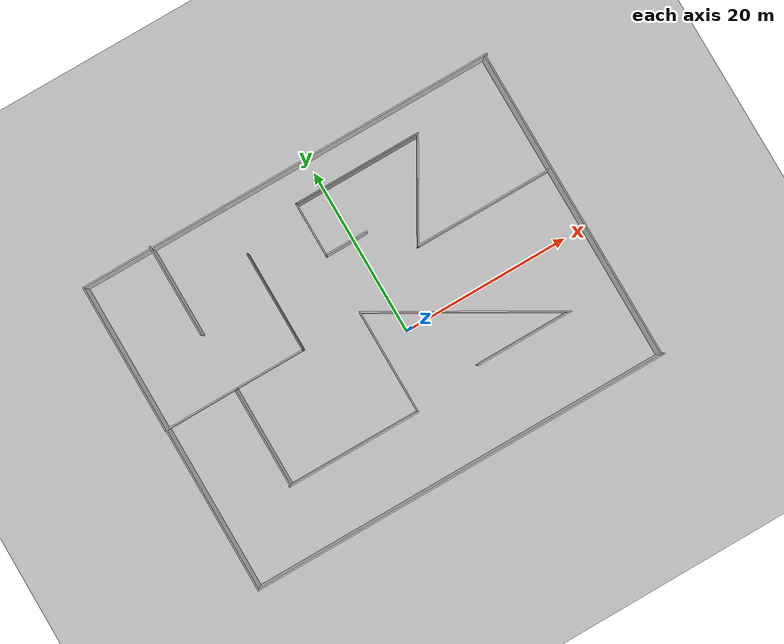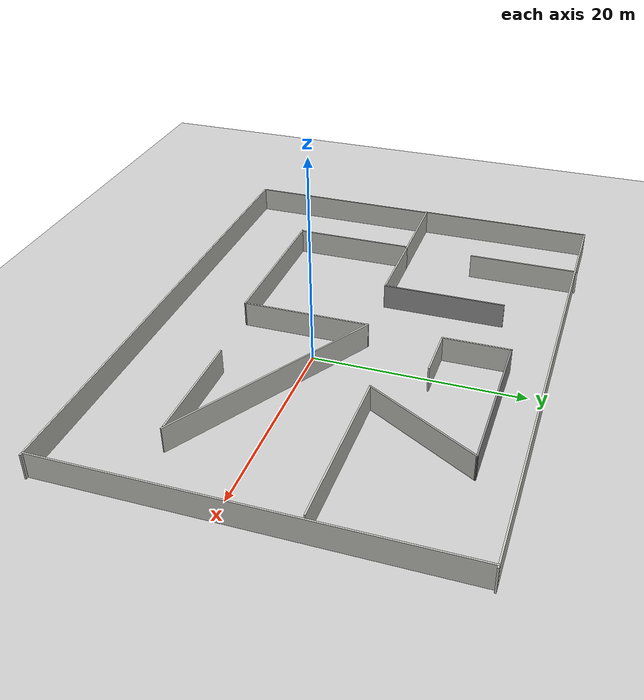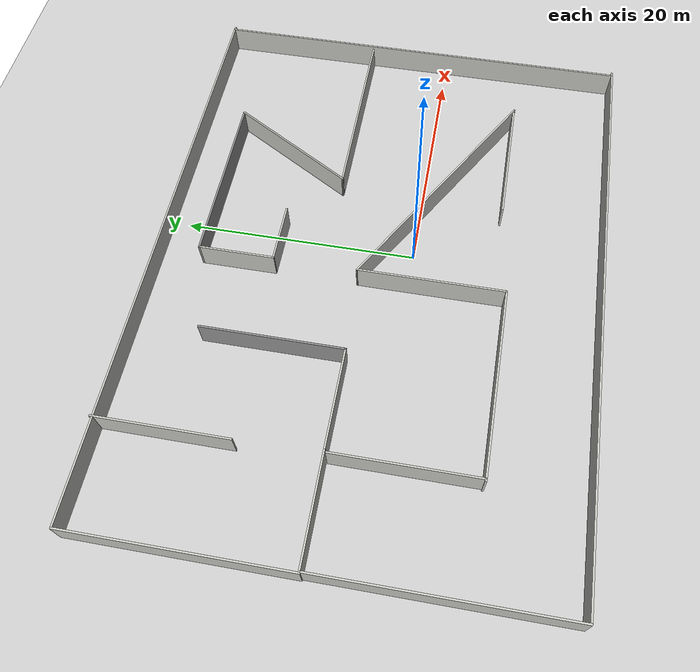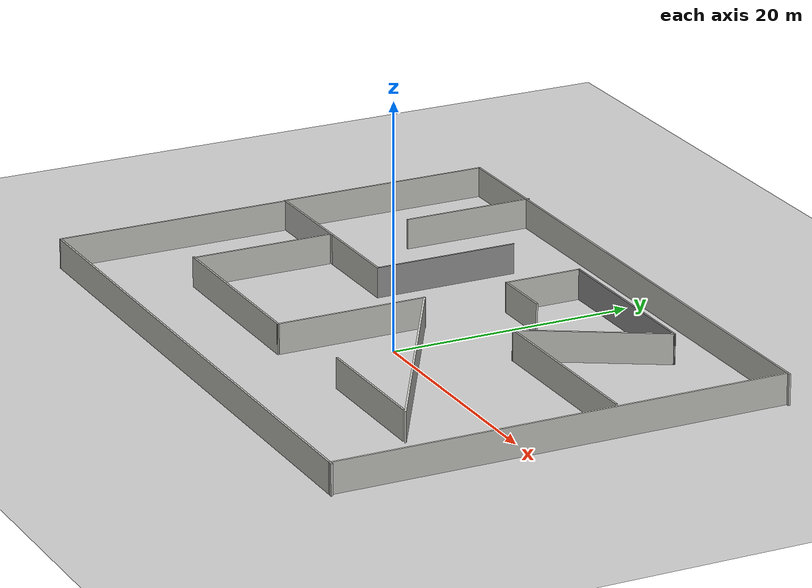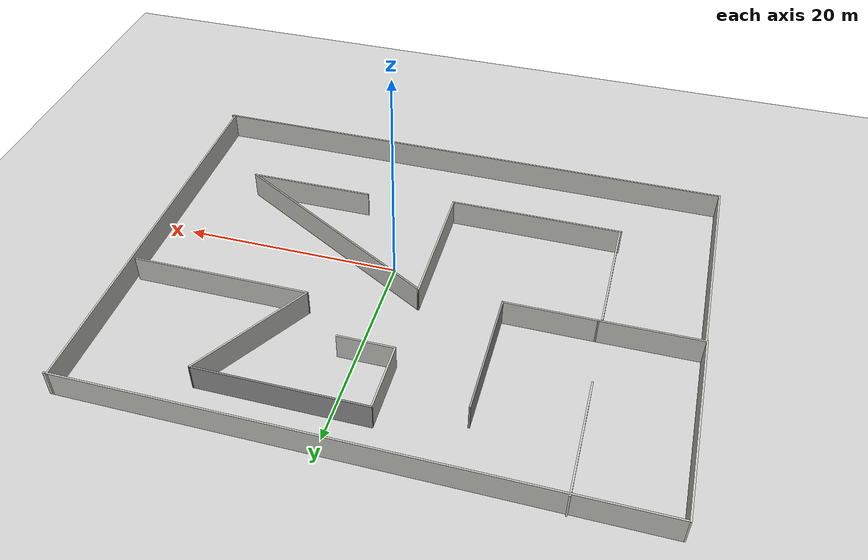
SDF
<sdf version="1.7">
 <world name="default">
  <model name="ground_plane">
   <static>1</static>
   <link name="link">
    <collision name="collision">
     <geometry><plane><normal>0 0 1</normal><size>100 100</size></plane></geometry>
     <surface>
      <contact><collide_bitmask>65535</collide_bitmask></contact>
      <friction><ode><mu>100</mu><mu2>50</mu2></ode></friction>
     </surface>
    </collision>
    <visual name="visual">
     <cast_shadows>0</cast_shadows>
     <geometry><plane><normal>0 0 1</normal><size>100 100</size></plane></geometry>
     <material>
      <script><uri>file://media/materials/scripts/gazebo.material</uri><name>Gazebo/Grey</name></script>
     </material>
    </visual>
   </link>
  </model>
  <model name="custom_world_rooms">
   <pose>-2.59664 2.82323 0 0 -0 0</pose>
   <link name="Wall_1">
    <collision name="Wall_1_Collision">
     <geometry><box><size>19.75 0.15 2.5</size></box></geometry>
     <pose>0 0 1.25 0 -0 0</pose>
    </collision>
    <visual name="Wall_1_Visual">
     <pose>0 0 1.25 0 -0 0</pose>
     <geometry><box><size>19.75 0.15 2.5</size></box></geometry>
     <material>
      <script><uri>file://media/materials/scripts/gazebo.material</uri><name>Gazebo/CeilingTiled</name></script>
      <ambient>1 1 1 1</ambient>
     </material>
     <meta><layer>0</layer></meta>
    </visual>
    <pose>-24.9298 -8.83937 0 0 -0 -1.5708</pose>
   </link>
   <link name="Wall_10">
    <collision name="Wall_10_Collision">
     <geometry><box><size>12.5 0.15 2.5</size></box></geometry>
     <pose>0 0 1.25 0 -0 0</pose>
    </collision>
    <visual name="Wall_10_Visual">
     <pose>0 0 1.25 0 -0 0</pose>
     <geometry><box><size>12.5 0.15 2.5</size></box></geometry>
     <material>
      <script><uri>file://media/materials/scripts/gazebo.material</uri><name>Gazebo/CeilingTiled</name></script>
      <ambient>1 1 1 1</ambient>
     </material>
     <meta><layer>0</layer></meta>
    </visual>
    <pose>-0.799541 -4.73911 0 0 -0 1.5708</pose>
   </link>
   <link name="Wall_11">
    <collision name="Wall_11_Collision">
     <geometry><box><size>22.75 0.15 2.5</size></box></geometry>
     <pose>0 0 1.25 0 -0 0</pose>
    </collision>
    <visual name="Wall_11_Visual">
     <pose>0 0 1.25 0 -0 0</pose>
     <geometry><box><size>22.75 0.15 2.5</size></box></geometry>
     <material>
      <script><uri>file://media/materials/scripts/gazebo.material</uri><name>Gazebo/CeilingTiled</name></script>
      <ambient>1 1 1 1</ambient>
     </material>
     <meta><layer>0</layer></meta>
    </visual>
    <pose>8.98655 -4.2141 0 0 -0 -0.523599</pose>
   </link>
   <link name="Wall_13">
    <collision name="Wall_13_Collision">
     <geometry><box><size>11 0.15 2.5</size></box></geometry>
     <pose>0 0 1.25 0 -0 0</pose>
    </collision>
    <visual name="Wall_13_Visual">
     <pose>0 0 1.25 0 -0 0</pose>
     <geometry><box><size>11 0.15 2.5</size></box></geometry>
     <material>
      <script><uri>file://media/materials/scripts/gazebo.material</uri><name>Gazebo/CeilingTiled</name></script>
      <ambient>1 1 1 1</ambient>
     </material>
     <meta><layer>0</layer></meta>
    </visual>
    <pose>-16.6749 13.3397 0 0 -0 -1.5708</pose>
   </link>
   <link name="Wall_2">
    <collision name="Wall_2_Collision">
     <geometry><box><size>49.9782 0.15 2.5</size></box></geometry>
     <pose>0 0 1.25 0 -0 0</pose>
    </collision>
    <visual name="Wall_2_Visual">
     <pose>0 0 1.25 0 -0 0</pose>
     <geometry><box><size>49.9782 0.15 2.5</size></box></geometry>
     <material>
      <script><uri>file://media/materials/scripts/gazebo.material</uri><name>Gazebo/CeilingTiled</name></script>
      <ambient>1 1 1 1</ambient>
     </material>
     <meta><layer>0</layer></meta>
    </visual>
    <pose>0.109385 -18.702 0 0 -0 -0.002512</pose>
   </link>
   <link name="Wall_26">
    <collision name="Wall_26_Collision">
     <geometry><box><size>8.25 0.15 2.5</size></box></geometry>
     <pose>0 0 1.25 0 -0 0</pose>
    </collision>
    <visual name="Wall_26_Visual">
     <pose>0 0 1.25 0 -0 0</pose>
     <geometry><box><size>8.25 0.15 2.5</size></box></geometry>
     <material>
      <script><uri>file://media/materials/scripts/gazebo.material</uri><name>Gazebo/CeilingTiled</name></script>
      <ambient>1 1 1 1</ambient>
     </material>
     <meta><layer>0</layer></meta>
    </visual>
    <pose>-12.1188 1.02023 0 0 -0 0</pose>
   </link>
   <link name="Wall_27">
    <collision name="Wall_27_Collision">
     <geometry><box><size>12 0.15 2.5</size></box></geometry>
     <pose>0 0 1.25 0 -0 0</pose>
    </collision>
    <visual name="Wall_27_Visual">
     <pose>0 0 1.25 0 -0 0</pose>
     <geometry><box><size>12 0.15 2.5</size></box></geometry>
     <material>
      <script><uri>file://media/materials/scripts/gazebo.material</uri><name>Gazebo/Grey</name></script>
      <ambient>1 1 1 1</ambient>
     </material>
     <meta><layer>0</layer></meta>
    </visual>
    <pose>-8.06878 6.94523 0 0 -0 1.5708</pose>
   </link>
   <link name="Wall_29">
    <collision name="Wall_29_Collision">
     <geometry><box><size>16.25 0.15 2.5</size></box></geometry>
     <pose>0 0 1.25 0 -0 0</pose>
    </collision>
    <visual name="Wall_29_Visual">
     <pose>0 0 1.25 0 -0 0</pose>
     <geometry><box><size>16.25 0.15 2.5</size></box></geometry>
     <material>
      <script><uri>file://media/materials/scripts/gazebo.material</uri><name>Gazebo/CeilingTiled</name></script>
      <ambient>1 1 1 1</ambient>
     </material>
     <meta><layer>0</layer></meta>
    </visual>
    <pose>16.2733 4.42468 0 0 -0 3.14159</pose>
   </link>
   <link name="Wall_3">
    <collision name="Wall_3_Collision">
     <geometry><box><size>37.5 0.15 2.5</size></box></geometry>
     <pose>0 0 1.25 0 -0 0</pose>
    </collision>
    <visual name="Wall_3_Visual">
     <pose>0 0 1.25 0 -0 0</pose>
     <geometry><box><size>37.5 0.15 2.5</size></box></geometry>
     <material>
      <script><uri>file://media/materials/scripts/gazebo.material</uri><name>Gazebo/CeilingTiled</name></script>
      <ambient>1 1 1 1</ambient>
     </material>
     <meta><layer>0</layer></meta>
    </visual>
    <pose>24.7731 -0.089532 0 0 -0 1.5708</pose>
   </link>
   <link name="Wall_30">
    <collision name="Wall_30_Collision">
     <geometry><box><size>12.25 0.15 2.5</size></box></geometry>
     <pose>0 0 1.25 0 -0 0</pose>
    </collision>
    <visual name="Wall_30_Visual">
     <pose>0 0 1.25 0 -0 0</pose>
     <geometry><box><size>12.25 0.15 2.5</size></box></geometry>
     <material>
      <script><uri>file://media/materials/scripts/gazebo.material</uri><name>Gazebo/CeilingTiled</name></script>
      <ambient>1 1 1 1</ambient>
     </material>
     <meta><layer>0</layer></meta>
    </visual>
    <pose>11.2483 9.66413 0 0 -0 1.0472</pose>
   </link>
   <link name="Wall_31">
    <collision name="Wall_31_Collision">
     <geometry><box><size>15.25 0.15 2.5</size></box></geometry>
     <pose>0 0 1.25 0 -0 0</pose>
    </collision>
    <visual name="Wall_31_Visual">
     <pose>0 0 1.25 0 -0 0</pose>
     <geometry><box><size>15.25 0.15 2.5</size></box></geometry>
     <material>
      <script><uri>file://media/materials/scripts/gazebo.material</uri><name>Gazebo/Grey</name></script>
      <ambient>1 1 1 1</ambient>
     </material>
     <meta><layer>0</layer></meta>
    </visual>
    <pose>6.7233 14.9036 0 0 -0 3.14159</pose>
   </link>
   <link name="Wall_32">
    <collision name="Wall_32_Collision">
     <geometry><box><size>6.5 0.15 2.5</size></box></geometry>
     <pose>0 0 1.25 0 -0 0</pose>
    </collision>
    <visual name="Wall_32_Visual">
     <pose>0 0 1.25 0 -0 0</pose>
     <geometry><box><size>6.5 0.15 2.5</size></box></geometry>
     <material>
      <script><uri>file://media/materials/scripts/gazebo.material</uri><name>Gazebo/CeilingTiled</name></script>
      <ambient>1 1 1 1</ambient>
     </material>
     <meta><layer>0</layer></meta>
    </visual>
    <pose>-0.8267 11.7286 0 0 -0 -1.5708</pose>
   </link>
   <link name="Wall_34">
    <collision name="Wall_34_Collision">
     <geometry><box><size>11.25 0.15 2.5</size></box></geometry>
     <pose>0 0 1.25 0 -0 0</pose>
    </collision>
    <visual name="Wall_34_Visual">
     <pose>0 0 1.25 0 -0 0</pose>
     <geometry><box><size>11.25 0.15 2.5</size></box></geometry>
     <material>
      <script><uri>file://media/materials/scripts/gazebo.material</uri><name>Gazebo/CeilingTiled</name></script>
      <ambient>1 1 1 1</ambient>
     </material>
     <meta><layer>0</layer></meta>
    </visual>
    <pose>12.8906 -9.84402 0 0 -0 3.14159</pose>
   </link>
   <link name="Wall_36">
    <collision name="Wall_36_Collision">
     <geometry><box><size>5 0.15 2.5</size></box></geometry>
     <pose>0 0 1.25 0 -0 0</pose>
    </collision>
    <visual name="Wall_36_Visual">
     <pose>0 0 1.25 0 -0 0</pose>
     <geometry><box><size>5 0.15 2.5</size></box></geometry>
     <material>
      <script><uri>file://media/materials/scripts/gazebo.material</uri><name>Gazebo/CeilingTiled</name></script>
      <ambient>1 1 1 1</ambient>
     </material>
     <meta><layer>0</layer></meta>
    </visual>
    <pose>1.72156 8.5411 0 0 -0 0</pose>
   </link>
   <link name="Wall_4">
    <collision name="Wall_4_Collision">
     <geometry><box><size>50.0614 0.15 2.5</size></box></geometry>
     <pose>0 0 1.25 0 -0 0</pose>
    </collision>
    <visual name="Wall_4_Visual">
     <pose>0 0 1.25 0 -0 0</pose>
     <geometry><box><size>50.0614 0.15 2.5</size></box></geometry>
     <material>
      <script><uri>file://media/materials/scripts/gazebo.material</uri><name>Gazebo/CeilingTiled</name></script>
      <ambient>1 1 1 1</ambient>
     </material>
     <meta><layer>0</layer></meta>
    </visual>
    <pose>0.067715 18.5855 0 0 -0 3.14159</pose>
   </link>
   <link name="Wall_5">
    <collision name="Wall_5_Collision">
     <geometry><box><size>17.7606 0.15 2.5</size></box></geometry>
     <pose>0 0 1.25 0 -0 0</pose>
    </collision>
    <visual name="Wall_5_Visual">
     <pose>0 0 1.25 0 -0 0</pose>
     <geometry><box><size>17.7606 0.15 2.5</size></box></geometry>
     <material>
      <script><uri>file://media/materials/scripts/gazebo.material</uri><name>Gazebo/CeilingTiled</name></script>
      <ambient>1 1 1 1</ambient>
     </material>
     <meta><layer>0</layer></meta>
    </visual>
    <pose>-25.0183 9.78017 0 0 -0 -1.57139</pose>
   </link>
   <link name="Wall_6">
    <collision name="Wall_6_Collision">
     <geometry><box><size>8.87972 0.15 2.5</size></box></geometry>
     <pose>0 0 1.25 0 -0 0</pose>
    </collision>
    <visual name="Wall_6_Visual">
     <pose>0 0 1.25 0 -0 0</pose>
     <geometry><box><size>8.87972 0.15 2.5</size></box></geometry>
     <material>
      <script><uri>file://media/materials/scripts/gazebo.material</uri><name>Gazebo/CeilingTiled</name></script>
      <ambient>1 1 1 1</ambient>
     </material>
     <meta><layer>0</layer></meta>
    </visual>
    <pose>-20.5336 0.997551 0 0 -0 0.005196</pose>
   </link>
   <link name="Wall_8">
    <collision name="Wall_8_Collision">
     <geometry><box><size>11.75 0.15 2.5</size></box></geometry>
     <pose>0 0 1.25 0 -0 0</pose>
    </collision>
    <visual name="Wall_8_Visual">
     <pose>0 0 1.25 0 -0 0</pose>
     <geometry><box><size>11.75 0.15 2.5</size></box></geometry>
     <material>
      <script><uri>file://media/materials/scripts/gazebo.material</uri><name>Gazebo/CeilingTiled</name></script>
      <ambient>1 1 1 1</ambient>
     </material>
     <meta><layer>0</layer></meta>
    </visual>
    <pose>-16.4594 -4.9944 0 0 -0 -1.5708</pose>
   </link>
   <link name="Wall_9">
    <collision name="Wall_9_Collision">
     <geometry><box><size>15.9297 0.15 2.5</size></box></geometry>
     <pose>0 0 1.25 0 -0 0</pose>
    </collision>
    <visual name="Wall_9_Visual">
     <pose>0 0 1.25 0 -0 0</pose>
     <geometry><box><size>15.9297 0.15 2.5</size></box></geometry>
     <material>
      <script><uri>file://media/materials/scripts/gazebo.material</uri><name>Gazebo/CeilingTiled</name></script>
      <ambient>1 1 1 1</ambient>
     </material>
     <meta><layer>0</layer></meta>
    </visual>
    <pose>-8.68932 -10.8842 0 0 -0 -0.003793</pose>
   </link>
   <static>1</static>
  </model>
 </world>
</sdf>
